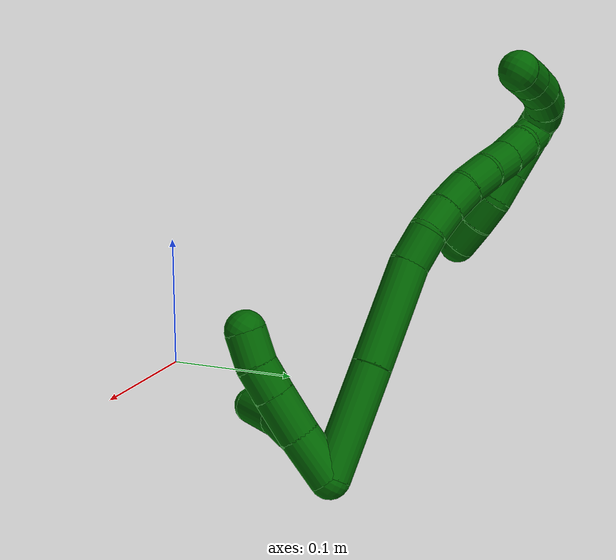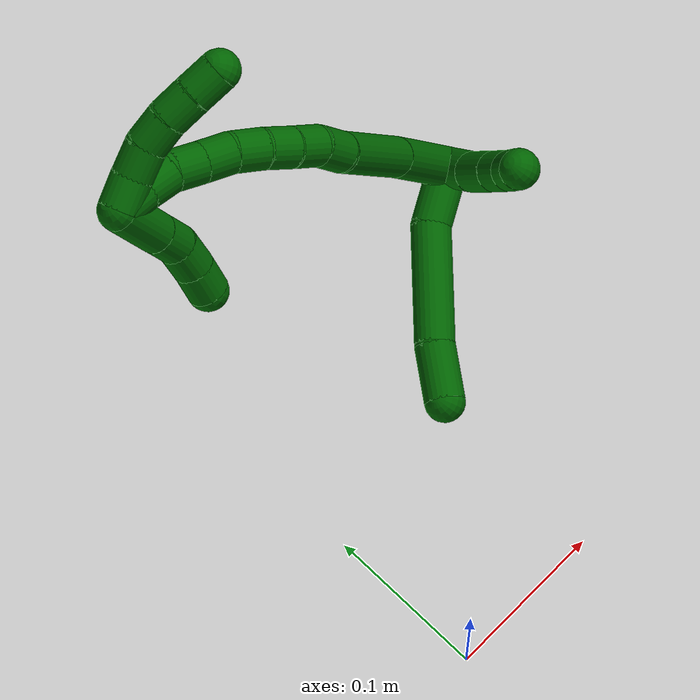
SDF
<sdf version="1.7">
 <world name="default">
  <model name="6">
   <static>0</static>
   <link name="6">
    <collision name="collision-cylinder-e_1_2_8">
     <pose>-0.017038 0.008734 0.000549 -1.50805 -1.09632 1.04128</pose>
     <geometry><cylinder><radius>0.0125</radius><length>0.038307</length></cylinder></geometry>
     <surface>
      <friction><ode><mu>1.16</mu><mu2>1.16</mu2><slip1>0</slip1><slip2>0</slip2></ode></friction>
      <contact><ode><kp>1e+06</kp><kd>1</kd><max_vel>0</max_vel><min_depth>0.001</min_depth></ode></contact>
     </surface>
    </collision>
    <visual name="visual-cylinder-e_1_2_8">
     <pose>-0.017038 0.008734 0.000549 -1.50805 -1.09632 1.04128</pose>
     <geometry><cylinder><radius>0.0125</radius><length>0.038307</length></cylinder></geometry>
     <material><ambient>0 0.392157 0.003922 1</ambient></material>
    </visual>
    <collision name="collision-cylinder-e_2_8_9">
     <pose>-0.071619 0.023298 -5.1e-05 -1.7652 -1.41381 1.6088</pose>
     <geometry><cylinder><radius>0.0125</radius><length>0.076023</length></cylinder></geometry>
     <surface>
      <friction><ode><mu>1.16</mu><mu2>1.16</mu2><slip1>0</slip1><slip2>0</slip2></ode></friction>
      <contact><ode><kp>1e+06</kp><kd>1</kd><max_vel>0</max_vel><min_depth>0.001</min_depth></ode></contact>
     </surface>
    </collision>
    <visual name="visual-cylinder-e_2_8_9">
     <pose>-0.071619 0.023298 -5.1e-05 -1.7652 -1.41381 1.6088</pose>
     <geometry><cylinder><radius>0.0125</radius><length>0.076023</length></cylinder></geometry>
     <material><ambient>0 0.392157 0.003922 1</ambient></material>
    </visual>
    <collision name="collision-cylinder-e_3_9_6">
     <pose>-0.126775 0.030219 -0.003795 -2.74408 -1.41225 2.67774</pose>
     <geometry><cylinder><radius>0.0125</radius><length>0.03567</length></cylinder></geometry>
     <surface>
      <friction><ode><mu>1.16</mu><mu2>1.16</mu2><slip1>0</slip1><slip2>0</slip2></ode></friction>
      <contact><ode><kp>1e+06</kp><kd>1</kd><max_vel>0</max_vel><min_depth>0.001</min_depth></ode></contact>
     </surface>
    </collision>
    <visual name="visual-cylinder-e_3_9_6">
     <pose>-0.126775 0.030219 -0.003795 -2.74408 -1.41225 2.67774</pose>
     <geometry><cylinder><radius>0.0125</radius><length>0.03567</length></cylinder></geometry>
     <material><ambient>0 0.392157 0.003922 1</ambient></material>
    </visual>
    <collision name="collision-cylinder-e_1_2_10">
     <pose>-0.008355 -0.011238 0.006451 1.04972 -0.572709 -0.337741</pose>
     <geometry><cylinder><radius>0.0125</radius><length>0.030836</length></cylinder></geometry>
     <surface>
      <friction><ode><mu>1.16</mu><mu2>1.16</mu2><slip1>0</slip1><slip2>0</slip2></ode></friction>
      <contact><ode><kp>1e+06</kp><kd>1</kd><max_vel>0</max_vel><min_depth>0.001</min_depth></ode></contact>
     </surface>
    </collision>
    <visual name="visual-cylinder-e_1_2_10">
     <pose>-0.008355 -0.011238 0.006451 1.04972 -0.572709 -0.337741</pose>
     <geometry><cylinder><radius>0.0125</radius><length>0.030836</length></cylinder></geometry>
     <material><ambient>0 0.392157 0.003922 1</ambient></material>
    </visual>
    <collision name="collision-cylinder-e_2_10_11">
     <pose>-0.023134 -0.033172 0.019674 1.00627 -0.469569 -0.261791</pose>
     <geometry><cylinder><radius>0.0125</radius><length>0.028392</length></cylinder></geometry>
     <surface>
      <friction><ode><mu>1.16</mu><mu2>1.16</mu2><slip1>0</slip1><slip2>0</slip2></ode></friction>
      <contact><ode><kp>1e+06</kp><kd>1</kd><max_vel>0</max_vel><min_depth>0.001</min_depth></ode></contact>
     </surface>
    </collision>
    <visual name="visual-cylinder-e_2_10_11">
     <pose>-0.023134 -0.033172 0.019674 1.00627 -0.469569 -0.261791</pose>
     <geometry><cylinder><radius>0.0125</radius><length>0.028392</length></cylinder></geometry>
     <material><ambient>0 0.392157 0.003922 1</ambient></material>
    </visual>
    <collision name="collision-cylinder-e_3_11_12">
     <pose>-0.033997 -0.051358 0.031411 0.985607 -0.458817 -0.249495</pose>
     <geometry><cylinder><radius>0.0125</radius><length>0.020046</length></cylinder></geometry>
     <surface>
      <friction><ode><mu>1.16</mu><mu2>1.16</mu2><slip1>0</slip1><slip2>0</slip2></ode></friction>
      <contact><ode><kp>1e+06</kp><kd>1</kd><max_vel>0</max_vel><min_depth>0.001</min_depth></ode></contact>
     </surface>
    </collision>
    <visual name="visual-cylinder-e_3_11_12">
     <pose>-0.033997 -0.051358 0.031411 0.985607 -0.458817 -0.249495</pose>
     <geometry><cylinder><radius>0.0125</radius><length>0.020046</length></cylinder></geometry>
     <material><ambient>0 0.392157 0.003922 1</ambient></material>
    </visual>
    <collision name="collision-cylinder-e_4_12_5">
     <pose>-0.042866 -0.065166 0.043293 0.740024 -0.441752 -0.173749</pose>
     <geometry><cylinder><radius>0.0125</radius><length>0.020726</length></cylinder></geometry>
     <surface>
      <friction><ode><mu>1.16</mu><mu2>1.16</mu2><slip1>0</slip1><slip2>0</slip2></ode></friction>
      <contact><ode><kp>1e+06</kp><kd>1</kd><max_vel>0</max_vel><min_depth>0.001</min_depth></ode></contact>
     </surface>
    </collision>
    <visual name="visual-cylinder-e_4_12_5">
     <pose>-0.042866 -0.065166 0.043293 0.740024 -0.441752 -0.173749</pose>
     <geometry><cylinder><radius>0.0125</radius><length>0.020726</length></cylinder></geometry>
     <material><ambient>0 0.392157 0.003922 1</ambient></material>
    </visual>
    <collision name="collision-cylinder-e_1_2_13">
     <pose>-0.008836 -0.000314 0.033872 0.00928 -0.255176 -0.001191</pose>
     <geometry><cylinder><radius>0.0125</radius><length>0.070015</length></cylinder></geometry>
     <surface>
      <friction><ode><mu>1.16</mu><mu2>1.16</mu2><slip1>0</slip1><slip2>0</slip2></ode></friction>
      <contact><ode><kp>1e+06</kp><kd>1</kd><max_vel>0</max_vel><min_depth>0.001</min_depth></ode></contact>
     </surface>
    </collision>
    <visual name="visual-cylinder-e_1_2_13">
     <pose>-0.008836 -0.000314 0.033872 0.00928 -0.255176 -0.001191</pose>
     <geometry><cylinder><radius>0.0125</radius><length>0.070015</length></cylinder></geometry>
     <material><ambient>0 0.392157 0.003922 1</ambient></material>
    </visual>
    <collision name="collision-cylinder-e_2_13_14">
     <pose>-0.027176 -2.7e-05 0.099352 -0.019048 -0.292013 0.002801</pose>
     <geometry><cylinder><radius>0.0125</radius><length>0.066022</length></cylinder></geometry>
     <surface>
      <friction><ode><mu>1.16</mu><mu2>1.16</mu2><slip1>0</slip1><slip2>0</slip2></ode></friction>
      <contact><ode><kp>1e+06</kp><kd>1</kd><max_vel>0</max_vel><min_depth>0.001</min_depth></ode></contact>
     </surface>
    </collision>
    <visual name="visual-cylinder-e_2_13_14">
     <pose>-0.027176 -2.7e-05 0.099352 -0.019048 -0.292013 0.002801</pose>
     <geometry><cylinder><radius>0.0125</radius><length>0.066022</length></cylinder></geometry>
     <material><ambient>0 0.392157 0.003922 1</ambient></material>
    </visual>
    <collision name="collision-cylinder-e_3_14_15">
     <pose>-0.038146 0.001817 0.142346 -0.108597 -0.127376 0.006932</pose>
     <geometry><cylinder><radius>0.0125</radius><length>0.023094</length></cylinder></geometry>
     <surface>
      <friction><ode><mu>1.16</mu><mu2>1.16</mu2><slip1>0</slip1><slip2>0</slip2></ode></friction>
      <contact><ode><kp>1e+06</kp><kd>1</kd><max_vel>0</max_vel><min_depth>0.001</min_depth></ode></contact>
     </surface>
    </collision>
    <visual name="visual-cylinder-e_3_14_15">
     <pose>-0.038146 0.001817 0.142346 -0.108597 -0.127376 0.006932</pose>
     <geometry><cylinder><radius>0.0125</radius><length>0.023094</length></cylinder></geometry>
     <material><ambient>0 0.392157 0.003922 1</ambient></material>
    </visual>
    <collision name="collision-cylinder-e_4_15_16">
     <pose>-0.042177 0.006499 0.16292 -0.358274 -0.255593 0.046527</pose>
     <geometry><cylinder><radius>0.0125</radius><length>0.020282</length></cylinder></geometry>
     <surface>
      <friction><ode><mu>1.16</mu><mu2>1.16</mu2><slip1>0</slip1><slip2>0</slip2></ode></friction>
      <contact><ode><kp>1e+06</kp><kd>1</kd><max_vel>0</max_vel><min_depth>0.001</min_depth></ode></contact>
     </surface>
    </collision>
    <visual name="visual-cylinder-e_4_15_16">
     <pose>-0.042177 0.006499 0.16292 -0.358274 -0.255593 0.046527</pose>
     <geometry><cylinder><radius>0.0125</radius><length>0.020282</length></cylinder></geometry>
     <material><ambient>0 0.392157 0.003922 1</ambient></material>
    </visual>
    <collision name="collision-cylinder-e_5_16_17">
     <pose>-0.046635 0.014199 0.18097 -0.448111 -0.190324 0.043496</pose>
     <geometry><cylinder><radius>0.0125</radius><length>0.020025</length></cylinder></geometry>
     <surface>
      <friction><ode><mu>1.16</mu><mu2>1.16</mu2><slip1>0</slip1><slip2>0</slip2></ode></friction>
      <contact><ode><kp>1e+06</kp><kd>1</kd><max_vel>0</max_vel><min_depth>0.001</min_depth></ode></contact>
     </surface>
    </collision>
    <visual name="visual-cylinder-e_5_16_17">
     <pose>-0.046635 0.014199 0.18097 -0.448111 -0.190324 0.043496</pose>
     <geometry><cylinder><radius>0.0125</radius><length>0.020025</length></cylinder></geometry>
     <material><ambient>0 0.392157 0.003922 1</ambient></material>
    </visual>
    <collision name="collision-cylinder-e_6_17_18">
     <pose>-0.050461 0.024195 0.198062 -0.608622 -0.190259 0.059917</pose>
     <geometry><cylinder><radius>0.0125</radius><length>0.020435</length></cylinder></geometry>
     <surface>
      <friction><ode><mu>1.16</mu><mu2>1.16</mu2><slip1>0</slip1><slip2>0</slip2></ode></friction>
      <contact><ode><kp>1e+06</kp><kd>1</kd><max_vel>0</max_vel><min_depth>0.001</min_depth></ode></contact>
     </surface>
    </collision>
    <visual name="visual-cylinder-e_6_17_18">
     <pose>-0.050461 0.024195 0.198062 -0.608622 -0.190259 0.059917</pose>
     <geometry><cylinder><radius>0.0125</radius><length>0.020435</length></cylinder></geometry>
     <material><ambient>0 0.392157 0.003922 1</ambient></material>
    </visual>
    <collision name="collision-cylinder-e_7_18_19">
     <pose>-0.055587 0.036439 0.213208 -0.75507 -0.324498 0.129641</pose>
     <geometry><cylinder><radius>0.0125</radius><length>0.020037</length></cylinder></geometry>
     <surface>
      <friction><ode><mu>1.16</mu><mu2>1.16</mu2><slip1>0</slip1><slip2>0</slip2></ode></friction>
      <contact><ode><kp>1e+06</kp><kd>1</kd><max_vel>0</max_vel><min_depth>0.001</min_depth></ode></contact>
     </surface>
    </collision>
    <visual name="visual-cylinder-e_7_18_19">
     <pose>-0.055587 0.036439 0.213208 -0.75507 -0.324498 0.129641</pose>
     <geometry><cylinder><radius>0.0125</radius><length>0.020037</length></cylinder></geometry>
     <material><ambient>0 0.392157 0.003922 1</ambient></material>
    </visual>
    <collision name="collision-cylinder-e_8_19_20">
     <pose>-0.06213 0.048628 0.227662 -0.645837 -0.340918 0.115073</pose>
     <geometry><cylinder><radius>0.0125</radius><length>0.020032</length></cylinder></geometry>
     <surface>
      <friction><ode><mu>1.16</mu><mu2>1.16</mu2><slip1>0</slip1><slip2>0</slip2></ode></friction>
      <contact><ode><kp>1e+06</kp><kd>1</kd><max_vel>0</max_vel><min_depth>0.001</min_depth></ode></contact>
     </surface>
    </collision>
    <visual name="visual-cylinder-e_8_19_20">
     <pose>-0.06213 0.048628 0.227662 -0.645837 -0.340918 0.115073</pose>
     <geometry><cylinder><radius>0.0125</radius><length>0.020032</length></cylinder></geometry>
     <material><ambient>0 0.392157 0.003922 1</ambient></material>
    </visual>
    <collision name="collision-cylinder-e_9_20_21">
     <pose>-0.070865 0.060761 0.240654 -0.868977 -0.567504 0.269028</pose>
     <geometry><cylinder><radius>0.0125</radius><length>0.020039</length></cylinder></geometry>
     <surface>
      <friction><ode><mu>1.16</mu><mu2>1.16</mu2><slip1>0</slip1><slip2>0</slip2></ode></friction>
      <contact><ode><kp>1e+06</kp><kd>1</kd><max_vel>0</max_vel><min_depth>0.001</min_depth></ode></contact>
     </surface>
    </collision>
    <visual name="visual-cylinder-e_9_20_21">
     <pose>-0.070865 0.060761 0.240654 -0.868977 -0.567504 0.269028</pose>
     <geometry><cylinder><radius>0.0125</radius><length>0.020039</length></cylinder></geometry>
     <material><ambient>0 0.392157 0.003922 1</ambient></material>
    </visual>
    <collision name="collision-cylinder-e_10_21_1">
     <pose>-0.082497 0.072551 0.251827 -0.751024 -0.673784 0.27441</pose>
     <geometry><cylinder><radius>0.0125</radius><length>0.020021</length></cylinder></geometry>
     <surface>
      <friction><ode><mu>1.16</mu><mu2>1.16</mu2><slip1>0</slip1><slip2>0</slip2></ode></friction>
      <contact><ode><kp>1e+06</kp><kd>1</kd><max_vel>0</max_vel><min_depth>0.001</min_depth></ode></contact>
     </surface>
    </collision>
    <visual name="visual-cylinder-e_10_21_1">
     <pose>-0.082497 0.072551 0.251827 -0.751024 -0.673784 0.27441</pose>
     <geometry><cylinder><radius>0.0125</radius><length>0.020021</length></cylinder></geometry>
     <material><ambient>0 0.392157 0.003922 1</ambient></material>
    </visual>
    <collision name="collision-cylinder-e_1_1_22">
     <pose>-0.081064 0.07155 0.258472 1.42578 0.875441 0.768959</pose>
     <geometry><cylinder><radius>0.0125</radius><length>0.02</length></cylinder></geometry>
     <surface>
      <friction><ode><mu>1.16</mu><mu2>1.16</mu2><slip1>0</slip1><slip2>0</slip2></ode></friction>
      <contact><ode><kp>1e+06</kp><kd>1</kd><max_vel>0</max_vel><min_depth>0.001</min_depth></ode></contact>
     </surface>
    </collision>
    <visual name="visual-cylinder-e_1_1_22">
     <pose>-0.081064 0.07155 0.258472 1.42578 0.875441 0.768959</pose>
     <geometry><cylinder><radius>0.0125</radius><length>0.02</length></cylinder></geometry>
     <material><ambient>0 0.392157 0.003922 1</ambient></material>
    </visual>
    <collision name="collision-cylinder-e_2_22_23">
     <pose>-0.066933 0.057888 0.261572 1.28218 0.701425 0.533017</pose>
     <geometry><cylinder><radius>0.0125</radius><length>0.02</length></cylinder></geometry>
     <surface>
      <friction><ode><mu>1.16</mu><mu2>1.16</mu2><slip1>0</slip1><slip2>0</slip2></ode></friction>
      <contact><ode><kp>1e+06</kp><kd>1</kd><max_vel>0</max_vel><min_depth>0.001</min_depth></ode></contact>
     </surface>
    </collision>
    <visual name="visual-cylinder-e_2_22_23">
     <pose>-0.066933 0.057888 0.261572 1.28218 0.701425 0.533017</pose>
     <geometry><cylinder><radius>0.0125</radius><length>0.02</length></cylinder></geometry>
     <material><ambient>0 0.392157 0.003922 1</ambient></material>
    </visual>
    <collision name="collision-cylinder-e_3_23_24">
     <pose>-0.055804 0.0418 0.264897 1.44018 0.486611 0.428805</pose>
     <geometry><cylinder><radius>0.0125</radius><length>0.02</length></cylinder></geometry>
     <surface>
      <friction><ode><mu>1.16</mu><mu2>1.16</mu2><slip1>0</slip1><slip2>0</slip2></ode></friction>
      <contact><ode><kp>1e+06</kp><kd>1</kd><max_vel>0</max_vel><min_depth>0.001</min_depth></ode></contact>
     </surface>
    </collision>
    <visual name="visual-cylinder-e_3_23_24">
     <pose>-0.055804 0.0418 0.264897 1.44018 0.486611 0.428805</pose>
     <geometry><cylinder><radius>0.0125</radius><length>0.02</length></cylinder></geometry>
     <material><ambient>0 0.392157 0.003922 1</ambient></material>
    </visual>
    <collision name="collision-cylinder-e_4_24_25">
     <pose>-0.047064 0.023903 0.265795 1.59858 0.418476 0.429914</pose>
     <geometry><cylinder><radius>0.0125</radius><length>0.02</length></cylinder></geometry>
     <surface>
      <friction><ode><mu>1.16</mu><mu2>1.16</mu2><slip1>0</slip1><slip2>0</slip2></ode></friction>
      <contact><ode><kp>1e+06</kp><kd>1</kd><max_vel>0</max_vel><min_depth>0.001</min_depth></ode></contact>
     </surface>
    </collision>
    <visual name="visual-cylinder-e_4_24_25">
     <pose>-0.047064 0.023903 0.265795 1.59858 0.418476 0.429914</pose>
     <geometry><cylinder><radius>0.0125</radius><length>0.02</length></cylinder></geometry>
     <material><ambient>0 0.392157 0.003922 1</ambient></material>
    </visual>
    <collision name="collision-cylinder-e_5_25_4">
     <pose>-0.038684 0.005789 0.264687 1.66557 0.446265 0.489024</pose>
     <geometry><cylinder><radius>0.0125</radius><length>0.02</length></cylinder></geometry>
     <surface>
      <friction><ode><mu>1.16</mu><mu2>1.16</mu2><slip1>0</slip1><slip2>0</slip2></ode></friction>
      <contact><ode><kp>1e+06</kp><kd>1</kd><max_vel>0</max_vel><min_depth>0.001</min_depth></ode></contact>
     </surface>
    </collision>
    <visual name="visual-cylinder-e_5_25_4">
     <pose>-0.038684 0.005789 0.264687 1.66557 0.446265 0.489024</pose>
     <geometry><cylinder><radius>0.0125</radius><length>0.02</length></cylinder></geometry>
     <material><ambient>0 0.392157 0.003922 1</ambient></material>
    </visual>
    <collision name="collision-cylinder-e_1_1_26">
     <pose>-0.089123 0.078166 0.238371 -3.12716 -0.019819 1.88261</pose>
     <geometry><cylinder><radius>0.0125</radius><length>0.038361</length></cylinder></geometry>
     <surface>
      <friction><ode><mu>1.16</mu><mu2>1.16</mu2><slip1>0</slip1><slip2>0</slip2></ode></friction>
      <contact><ode><kp>1e+06</kp><kd>1</kd><max_vel>0</max_vel><min_depth>0.001</min_depth></ode></contact>
     </surface>
    </collision>
    <visual name="visual-cylinder-e_1_1_26">
     <pose>-0.089123 0.078166 0.238371 -3.12716 -0.019819 1.88261</pose>
     <geometry><cylinder><radius>0.0125</radius><length>0.038361</length></cylinder></geometry>
     <material><ambient>0 0.392157 0.003922 1</ambient></material>
    </visual>
    <collision name="collision-cylinder-e_2_26_27">
     <pose>-0.089666 0.078627 0.208674 -3.12409 -0.015494 1.44925</pose>
     <geometry><cylinder><radius>0.0125</radius><length>0.02105</length></cylinder></geometry>
     <surface>
      <friction><ode><mu>1.16</mu><mu2>1.16</mu2><slip1>0</slip1><slip2>0</slip2></ode></friction>
      <contact><ode><kp>1e+06</kp><kd>1</kd><max_vel>0</max_vel><min_depth>0.001</min_depth></ode></contact>
     </surface>
    </collision>
    <visual name="visual-cylinder-e_2_26_27">
     <pose>-0.089666 0.078627 0.208674 -3.12409 -0.015494 1.44925</pose>
     <geometry><cylinder><radius>0.0125</radius><length>0.02105</length></cylinder></geometry>
     <material><ambient>0 0.392157 0.003922 1</ambient></material>
    </visual>
    <collision name="collision-cylinder-e_3_27_28">
     <pose>-0.093194 0.080152 0.188528 -3.00317 -0.333355 2.35991</pose>
     <geometry><cylinder><radius>0.0125</radius><length>0.020567</length></cylinder></geometry>
     <surface>
      <friction><ode><mu>1.16</mu><mu2>1.16</mu2><slip1>0</slip1><slip2>0</slip2></ode></friction>
      <contact><ode><kp>1e+06</kp><kd>1</kd><max_vel>0</max_vel><min_depth>0.001</min_depth></ode></contact>
     </surface>
    </collision>
    <visual name="visual-cylinder-e_3_27_28">
     <pose>-0.093194 0.080152 0.188528 -3.00317 -0.333355 2.35991</pose>
     <geometry><cylinder><radius>0.0125</radius><length>0.020567</length></cylinder></geometry>
     <material><ambient>0 0.392157 0.003922 1</ambient></material>
    </visual>
    <collision name="collision-cylinder-e_4_28_3">
     <pose>-0.100617 0.083035 0.169883 -2.9723 -0.417396 2.37949</pose>
     <geometry><cylinder><radius>0.0125</radius><length>0.020022</length></cylinder></geometry>
     <surface>
      <friction><ode><mu>1.16</mu><mu2>1.16</mu2><slip1>0</slip1><slip2>0</slip2></ode></friction>
      <contact><ode><kp>1e+06</kp><kd>1</kd><max_vel>0</max_vel><min_depth>0.001</min_depth></ode></contact>
     </surface>
    </collision>
    <visual name="visual-cylinder-e_4_28_3">
     <pose>-0.100617 0.083035 0.169883 -2.9723 -0.417396 2.37949</pose>
     <geometry><cylinder><radius>0.0125</radius><length>0.020022</length></cylinder></geometry>
     <material><ambient>0 0.392157 0.003922 1</ambient></material>
    </visual>
    <collision name="collision-sphere-3">
     <pose>-0.104675 0.084577 0.160862 0 -0 0</pose>
     <geometry><sphere><radius>0.0125</radius></sphere></geometry>
     <surface>
      <friction><ode><mu>1.16</mu><mu2>1.16</mu2><slip1>0</slip1><slip2>0</slip2></ode></friction>
      <contact><ode><kp>1e+06</kp><kd>1</kd><max_vel>0</max_vel><min_depth>0.001</min_depth></ode></contact>
     </surface>
    </collision>
    <visual name="visual-sphere-3">
     <pose>-0.104675 0.084577 0.160862 0 -0 0</pose>
     <geometry><sphere><radius>0.0125</radius></sphere></geometry>
     <material><ambient>0 0.392157 0.003922 1</ambient></material>
    </visual>
    <collision name="collision-sphere-28">
     <pose>-0.096559 0.081493 0.178903 0 -0 0</pose>
     <geometry><sphere><radius>0.0125</radius></sphere></geometry>
     <surface>
      <friction><ode><mu>1.16</mu><mu2>1.16</mu2><slip1>0</slip1><slip2>0</slip2></ode></friction>
      <contact><ode><kp>1e+06</kp><kd>1</kd><max_vel>0</max_vel><min_depth>0.001</min_depth></ode></contact>
     </surface>
    </collision>
    <visual name="visual-sphere-28">
     <pose>-0.096559 0.081493 0.178903 0 -0 0</pose>
     <geometry><sphere><radius>0.0125</radius></sphere></geometry>
     <material><ambient>0 0.392157 0.003922 1</ambient></material>
    </visual>
    <collision name="collision-sphere-27">
     <pose>-0.089829 0.078811 0.198152 0 -0 0</pose>
     <geometry><sphere><radius>0.0125</radius></sphere></geometry>
     <surface>
      <friction><ode><mu>1.16</mu><mu2>1.16</mu2><slip1>0</slip1><slip2>0</slip2></ode></friction>
      <contact><ode><kp>1e+06</kp><kd>1</kd><max_vel>0</max_vel><min_depth>0.001</min_depth></ode></contact>
     </surface>
    </collision>
    <visual name="visual-sphere-27">
     <pose>-0.089829 0.078811 0.198152 0 -0 0</pose>
     <geometry><sphere><radius>0.0125</radius></sphere></geometry>
     <material><ambient>0 0.392157 0.003922 1</ambient></material>
    </visual>
    <collision name="collision-sphere-26">
     <pose>-0.089503 0.078443 0.219196 0 -0 0</pose>
     <geometry><sphere><radius>0.0125</radius></sphere></geometry>
     <surface>
      <friction><ode><mu>1.16</mu><mu2>1.16</mu2><slip1>0</slip1><slip2>0</slip2></ode></friction>
      <contact><ode><kp>1e+06</kp><kd>1</kd><max_vel>0</max_vel><min_depth>0.001</min_depth></ode></contact>
     </surface>
    </collision>
    <visual name="visual-sphere-26">
     <pose>-0.089503 0.078443 0.219196 0 -0 0</pose>
     <geometry><sphere><radius>0.0125</radius></sphere></geometry>
     <material><ambient>0 0.392157 0.003922 1</ambient></material>
    </visual>
    <collision name="collision-sphere-4">
     <pose>-0.034368 -0.003191 0.263834 0 -0 0</pose>
     <geometry><sphere><radius>0.0125</radius></sphere></geometry>
     <surface>
      <friction><ode><mu>1.16</mu><mu2>1.16</mu2><slip1>0</slip1><slip2>0</slip2></ode></friction>
      <contact><ode><kp>1e+06</kp><kd>1</kd><max_vel>0</max_vel><min_depth>0.001</min_depth></ode></contact>
     </surface>
    </collision>
    <visual name="visual-sphere-4">
     <pose>-0.034368 -0.003191 0.263834 0 -0 0</pose>
     <geometry><sphere><radius>0.0125</radius></sphere></geometry>
     <material><ambient>0 0.392157 0.003922 1</ambient></material>
    </visual>
    <collision name="collision-sphere-25">
     <pose>-0.043 0.014769 0.265541 0 -0 0</pose>
     <geometry><sphere><radius>0.0125</radius></sphere></geometry>
     <surface>
      <friction><ode><mu>1.16</mu><mu2>1.16</mu2><slip1>0</slip1><slip2>0</slip2></ode></friction>
      <contact><ode><kp>1e+06</kp><kd>1</kd><max_vel>0</max_vel><min_depth>0.001</min_depth></ode></contact>
     </surface>
    </collision>
    <visual name="visual-sphere-25">
     <pose>-0.043 0.014769 0.265541 0 -0 0</pose>
     <geometry><sphere><radius>0.0125</radius></sphere></geometry>
     <material><ambient>0 0.392157 0.003922 1</ambient></material>
    </visual>
    <collision name="collision-sphere-24">
     <pose>-0.051127 0.033036 0.266049 0 -0 0</pose>
     <geometry><sphere><radius>0.0125</radius></sphere></geometry>
     <surface>
      <friction><ode><mu>1.16</mu><mu2>1.16</mu2><slip1>0</slip1><slip2>0</slip2></ode></friction>
      <contact><ode><kp>1e+06</kp><kd>1</kd><max_vel>0</max_vel><min_depth>0.001</min_depth></ode></contact>
     </surface>
    </collision>
    <visual name="visual-sphere-24">
     <pose>-0.051127 0.033036 0.266049 0 -0 0</pose>
     <geometry><sphere><radius>0.0125</radius></sphere></geometry>
     <material><ambient>0 0.392157 0.003922 1</ambient></material>
    </visual>
    <collision name="collision-sphere-23">
     <pose>-0.06048 0.050564 0.263746 0 -0 0</pose>
     <geometry><sphere><radius>0.0125</radius></sphere></geometry>
     <surface>
      <friction><ode><mu>1.16</mu><mu2>1.16</mu2><slip1>0</slip1><slip2>0</slip2></ode></friction>
      <contact><ode><kp>1e+06</kp><kd>1</kd><max_vel>0</max_vel><min_depth>0.001</min_depth></ode></contact>
     </surface>
    </collision>
    <visual name="visual-sphere-23">
     <pose>-0.06048 0.050564 0.263746 0 -0 0</pose>
     <geometry><sphere><radius>0.0125</radius></sphere></geometry>
     <material><ambient>0 0.392157 0.003922 1</ambient></material>
    </visual>
    <collision name="collision-sphere-22">
     <pose>-0.073386 0.065211 0.259398 0 -0 0</pose>
     <geometry><sphere><radius>0.0125</radius></sphere></geometry>
     <surface>
      <friction><ode><mu>1.16</mu><mu2>1.16</mu2><slip1>0</slip1><slip2>0</slip2></ode></friction>
      <contact><ode><kp>1e+06</kp><kd>1</kd><max_vel>0</max_vel><min_depth>0.001</min_depth></ode></contact>
     </surface>
    </collision>
    <visual name="visual-sphere-22">
     <pose>-0.073386 0.065211 0.259398 0 -0 0</pose>
     <geometry><sphere><radius>0.0125</radius></sphere></geometry>
     <material><ambient>0 0.392157 0.003922 1</ambient></material>
    </visual>
    <collision name="collision-sphere-1">
     <pose>-0.088743 0.077889 0.257546 0 -0 0</pose>
     <geometry><sphere><radius>0.0125</radius></sphere></geometry>
     <surface>
      <friction><ode><mu>1.16</mu><mu2>1.16</mu2><slip1>0</slip1><slip2>0</slip2></ode></friction>
      <contact><ode><kp>1e+06</kp><kd>1</kd><max_vel>0</max_vel><min_depth>0.001</min_depth></ode></contact>
     </surface>
    </collision>
    <visual name="visual-sphere-1">
     <pose>-0.088743 0.077889 0.257546 0 -0 0</pose>
     <geometry><sphere><radius>0.0125</radius></sphere></geometry>
     <material><ambient>0 0.392157 0.003922 1</ambient></material>
    </visual>
    <collision name="collision-sphere-21">
     <pose>-0.076251 0.067213 0.246109 0 -0 0</pose>
     <geometry><sphere><radius>0.0125</radius></sphere></geometry>
     <surface>
      <friction><ode><mu>1.16</mu><mu2>1.16</mu2><slip1>0</slip1><slip2>0</slip2></ode></friction>
      <contact><ode><kp>1e+06</kp><kd>1</kd><max_vel>0</max_vel><min_depth>0.001</min_depth></ode></contact>
     </surface>
    </collision>
    <visual name="visual-sphere-21">
     <pose>-0.076251 0.067213 0.246109 0 -0 0</pose>
     <geometry><sphere><radius>0.0125</radius></sphere></geometry>
     <material><ambient>0 0.392157 0.003922 1</ambient></material>
    </visual>
    <collision name="collision-sphere-11">
     <pose>-0.029558 -0.043867 0.026447 0 -0 0</pose>
     <geometry><sphere><radius>0.0125</radius></sphere></geometry>
     <surface>
      <friction><ode><mu>1.16</mu><mu2>1.16</mu2><slip1>0</slip1><slip2>0</slip2></ode></friction>
      <contact><ode><kp>1e+06</kp><kd>1</kd><max_vel>0</max_vel><min_depth>0.001</min_depth></ode></contact>
     </surface>
    </collision>
    <visual name="visual-sphere-11">
     <pose>-0.029558 -0.043867 0.026447 0 -0 0</pose>
     <geometry><sphere><radius>0.0125</radius></sphere></geometry>
     <material><ambient>0 0.392157 0.003922 1</ambient></material>
    </visual>
    <collision name="collision-sphere-10">
     <pose>-0.016711 -0.022477 0.012901 0 -0 0</pose>
     <geometry><sphere><radius>0.0125</radius></sphere></geometry>
     <surface>
      <friction><ode><mu>1.16</mu><mu2>1.16</mu2><slip1>0</slip1><slip2>0</slip2></ode></friction>
      <contact><ode><kp>1e+06</kp><kd>1</kd><max_vel>0</max_vel><min_depth>0.001</min_depth></ode></contact>
     </surface>
    </collision>
    <visual name="visual-sphere-10">
     <pose>-0.016711 -0.022477 0.012901 0 -0 0</pose>
     <geometry><sphere><radius>0.0125</radius></sphere></geometry>
     <material><ambient>0 0.392157 0.003922 1</ambient></material>
    </visual>
    <collision name="collision-sphere-6">
     <pose>-0.144386 0.031309 -0.006391 0 -0 0</pose>
     <geometry><sphere><radius>0.0125</radius></sphere></geometry>
     <surface>
      <friction><ode><mu>1.16</mu><mu2>1.16</mu2><slip1>0</slip1><slip2>0</slip2></ode></friction>
      <contact><ode><kp>1e+06</kp><kd>1</kd><max_vel>0</max_vel><min_depth>0.001</min_depth></ode></contact>
     </surface>
    </collision>
    <visual name="visual-sphere-6">
     <pose>-0.144386 0.031309 -0.006391 0 -0 0</pose>
     <geometry><sphere><radius>0.0125</radius></sphere></geometry>
     <material><ambient>0 0.392157 0.003922 1</ambient></material>
    </visual>
    <collision name="collision-sphere-9">
     <pose>-0.109163 0.029128 -0.001199 0 -0 0</pose>
     <geometry><sphere><radius>0.0125</radius></sphere></geometry>
     <surface>
      <friction><ode><mu>1.16</mu><mu2>1.16</mu2><slip1>0</slip1><slip2>0</slip2></ode></friction>
      <contact><ode><kp>1e+06</kp><kd>1</kd><max_vel>0</max_vel><min_depth>0.001</min_depth></ode></contact>
     </surface>
    </collision>
    <visual name="visual-sphere-9">
     <pose>-0.109163 0.029128 -0.001199 0 -0 0</pose>
     <geometry><sphere><radius>0.0125</radius></sphere></geometry>
     <material><ambient>0 0.392157 0.003922 1</ambient></material>
    </visual>
    <collision name="collision-sphere-2">
     <geometry><sphere><radius>0.0125</radius></sphere></geometry>
     <surface>
      <friction><ode><mu>1.16</mu><mu2>1.16</mu2><slip1>0</slip1><slip2>0</slip2></ode></friction>
      <contact><ode><kp>1e+06</kp><kd>1</kd><max_vel>0</max_vel><min_depth>0.001</min_depth></ode></contact>
     </surface>
    </collision>
    <visual name="visual-sphere-2">
     <geometry><sphere><radius>0.0125</radius></sphere></geometry>
     <material><ambient>0 0.392157 0.003922 1</ambient></material>
    </visual>
    <collision name="collision-sphere-19">
     <pose>-0.058782 0.042946 0.220123 0 -0 0</pose>
     <geometry><sphere><radius>0.0125</radius></sphere></geometry>
     <surface>
      <friction><ode><mu>1.16</mu><mu2>1.16</mu2><slip1>0</slip1><slip2>0</slip2></ode></friction>
      <contact><ode><kp>1e+06</kp><kd>1</kd><max_vel>0</max_vel><min_depth>0.001</min_depth></ode></contact>
     </surface>
    </collision>
    <visual name="visual-sphere-19">
     <pose>-0.058782 0.042946 0.220123 0 -0 0</pose>
     <geometry><sphere><radius>0.0125</radius></sphere></geometry>
     <material><ambient>0 0.392157 0.003922 1</ambient></material>
    </visual>
    <collision name="collision-sphere-8">
     <pose>-0.034075 0.017467 0.001097 0 -0 0</pose>
     <geometry><sphere><radius>0.0125</radius></sphere></geometry>
     <surface>
      <friction><ode><mu>1.16</mu><mu2>1.16</mu2><slip1>0</slip1><slip2>0</slip2></ode></friction>
      <contact><ode><kp>1e+06</kp><kd>1</kd><max_vel>0</max_vel><min_depth>0.001</min_depth></ode></contact>
     </surface>
    </collision>
    <visual name="visual-sphere-8">
     <pose>-0.034075 0.017467 0.001097 0 -0 0</pose>
     <geometry><sphere><radius>0.0125</radius></sphere></geometry>
     <material><ambient>0 0.392157 0.003922 1</ambient></material>
    </visual>
    <collision name="collision-sphere-12">
     <pose>-0.038436 -0.058849 0.036375 0 -0 0</pose>
     <geometry><sphere><radius>0.0125</radius></sphere></geometry>
     <surface>
      <friction><ode><mu>1.16</mu><mu2>1.16</mu2><slip1>0</slip1><slip2>0</slip2></ode></friction>
      <contact><ode><kp>1e+06</kp><kd>1</kd><max_vel>0</max_vel><min_depth>0.001</min_depth></ode></contact>
     </surface>
    </collision>
    <visual name="visual-sphere-12">
     <pose>-0.038436 -0.058849 0.036375 0 -0 0</pose>
     <geometry><sphere><radius>0.0125</radius></sphere></geometry>
     <material><ambient>0 0.392157 0.003922 1</ambient></material>
    </visual>
    <collision name="collision-sphere-5">
     <pose>-0.047297 -0.071483 0.050211 0 -0 0</pose>
     <geometry><sphere><radius>0.0125</radius></sphere></geometry>
     <surface>
      <friction><ode><mu>1.16</mu><mu2>1.16</mu2><slip1>0</slip1><slip2>0</slip2></ode></friction>
      <contact><ode><kp>1e+06</kp><kd>1</kd><max_vel>0</max_vel><min_depth>0.001</min_depth></ode></contact>
     </surface>
    </collision>
    <visual name="visual-sphere-5">
     <pose>-0.047297 -0.071483 0.050211 0 -0 0</pose>
     <geometry><sphere><radius>0.0125</radius></sphere></geometry>
     <material><ambient>0 0.392157 0.003922 1</ambient></material>
    </visual>
    <collision name="collision-sphere-13">
     <pose>-0.017673 -0.000629 0.067745 0 -0 0</pose>
     <geometry><sphere><radius>0.0125</radius></sphere></geometry>
     <surface>
      <friction><ode><mu>1.16</mu><mu2>1.16</mu2><slip1>0</slip1><slip2>0</slip2></ode></friction>
      <contact><ode><kp>1e+06</kp><kd>1</kd><max_vel>0</max_vel><min_depth>0.001</min_depth></ode></contact>
     </surface>
    </collision>
    <visual name="visual-sphere-13">
     <pose>-0.017673 -0.000629 0.067745 0 -0 0</pose>
     <geometry><sphere><radius>0.0125</radius></sphere></geometry>
     <material><ambient>0 0.392157 0.003922 1</ambient></material>
    </visual>
    <collision name="collision-sphere-14">
     <pose>-0.036679 0.000576 0.13096 0 -0 0</pose>
     <geometry><sphere><radius>0.0125</radius></sphere></geometry>
     <surface>
      <friction><ode><mu>1.16</mu><mu2>1.16</mu2><slip1>0</slip1><slip2>0</slip2></ode></friction>
      <contact><ode><kp>1e+06</kp><kd>1</kd><max_vel>0</max_vel><min_depth>0.001</min_depth></ode></contact>
     </surface>
    </collision>
    <visual name="visual-sphere-14">
     <pose>-0.036679 0.000576 0.13096 0 -0 0</pose>
     <geometry><sphere><radius>0.0125</radius></sphere></geometry>
     <material><ambient>0 0.392157 0.003922 1</ambient></material>
    </visual>
    <collision name="collision-sphere-15">
     <pose>-0.039613 0.003058 0.153732 0 -0 0</pose>
     <geometry><sphere><radius>0.0125</radius></sphere></geometry>
     <surface>
      <friction><ode><mu>1.16</mu><mu2>1.16</mu2><slip1>0</slip1><slip2>0</slip2></ode></friction>
      <contact><ode><kp>1e+06</kp><kd>1</kd><max_vel>0</max_vel><min_depth>0.001</min_depth></ode></contact>
     </surface>
    </collision>
    <visual name="visual-sphere-15">
     <pose>-0.039613 0.003058 0.153732 0 -0 0</pose>
     <geometry><sphere><radius>0.0125</radius></sphere></geometry>
     <material><ambient>0 0.392157 0.003922 1</ambient></material>
    </visual>
    <collision name="collision-sphere-16">
     <pose>-0.04474 0.009939 0.172109 0 -0 0</pose>
     <geometry><sphere><radius>0.0125</radius></sphere></geometry>
     <surface>
      <friction><ode><mu>1.16</mu><mu2>1.16</mu2><slip1>0</slip1><slip2>0</slip2></ode></friction>
      <contact><ode><kp>1e+06</kp><kd>1</kd><max_vel>0</max_vel><min_depth>0.001</min_depth></ode></contact>
     </surface>
    </collision>
    <visual name="visual-sphere-16">
     <pose>-0.04474 0.009939 0.172109 0 -0 0</pose>
     <geometry><sphere><radius>0.0125</radius></sphere></geometry>
     <material><ambient>0 0.392157 0.003922 1</ambient></material>
    </visual>
    <collision name="collision-sphere-17">
     <pose>-0.048529 0.018459 0.189831 0 -0 0</pose>
     <geometry><sphere><radius>0.0125</radius></sphere></geometry>
     <surface>
      <friction><ode><mu>1.16</mu><mu2>1.16</mu2><slip1>0</slip1><slip2>0</slip2></ode></friction>
      <contact><ode><kp>1e+06</kp><kd>1</kd><max_vel>0</max_vel><min_depth>0.001</min_depth></ode></contact>
     </surface>
    </collision>
    <visual name="visual-sphere-17">
     <pose>-0.048529 0.018459 0.189831 0 -0 0</pose>
     <geometry><sphere><radius>0.0125</radius></sphere></geometry>
     <material><ambient>0 0.392157 0.003922 1</ambient></material>
    </visual>
    <collision name="collision-sphere-18">
     <pose>-0.052393 0.029931 0.206294 0 -0 0</pose>
     <geometry><sphere><radius>0.0125</radius></sphere></geometry>
     <surface>
      <friction><ode><mu>1.16</mu><mu2>1.16</mu2><slip1>0</slip1><slip2>0</slip2></ode></friction>
      <contact><ode><kp>1e+06</kp><kd>1</kd><max_vel>0</max_vel><min_depth>0.001</min_depth></ode></contact>
     </surface>
    </collision>
    <visual name="visual-sphere-18">
     <pose>-0.052393 0.029931 0.206294 0 -0 0</pose>
     <geometry><sphere><radius>0.0125</radius></sphere></geometry>
     <material><ambient>0 0.392157 0.003922 1</ambient></material>
    </visual>
    <collision name="collision-sphere-20">
     <pose>-0.065479 0.054309 0.2352 0 -0 0</pose>
     <geometry><sphere><radius>0.0125</radius></sphere></geometry>
     <surface>
      <friction><ode><mu>1.16</mu><mu2>1.16</mu2><slip1>0</slip1><slip2>0</slip2></ode></friction>
      <contact><ode><kp>1e+06</kp><kd>1</kd><max_vel>0</max_vel><min_depth>0.001</min_depth></ode></contact>
     </surface>
    </collision>
    <visual name="visual-sphere-20">
     <pose>-0.065479 0.054309 0.2352 0 -0 0</pose>
     <geometry><sphere><radius>0.0125</radius></sphere></geometry>
     <material><ambient>0 0.392157 0.003922 1</ambient></material>
    </visual>
    <inertial>
     <pose>-0.052902 0.022402 0.121575 0 -0 0</pose>
     <mass>0.75</mass>
     <inertia><ixx>7.8e-05</ixx><ixy>0</ixy><ixz>0</ixz><iyy>0.000147</iyy><iyz>0</iyz><izz>8.5e-05</izz></inertia>
    </inertial>
   </link>
   <pose>0.211027 0.217201 0.016055 -0.544779 0.124289 0.910073</pose>
  </model>
 </world>
</sdf>
